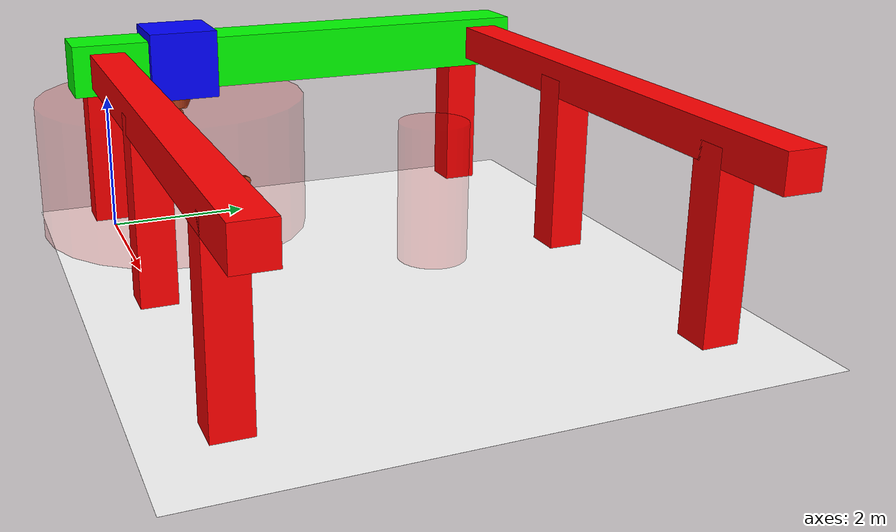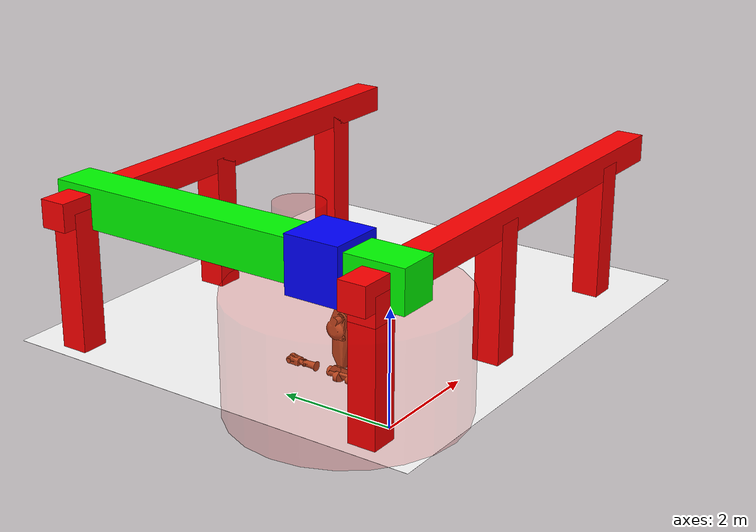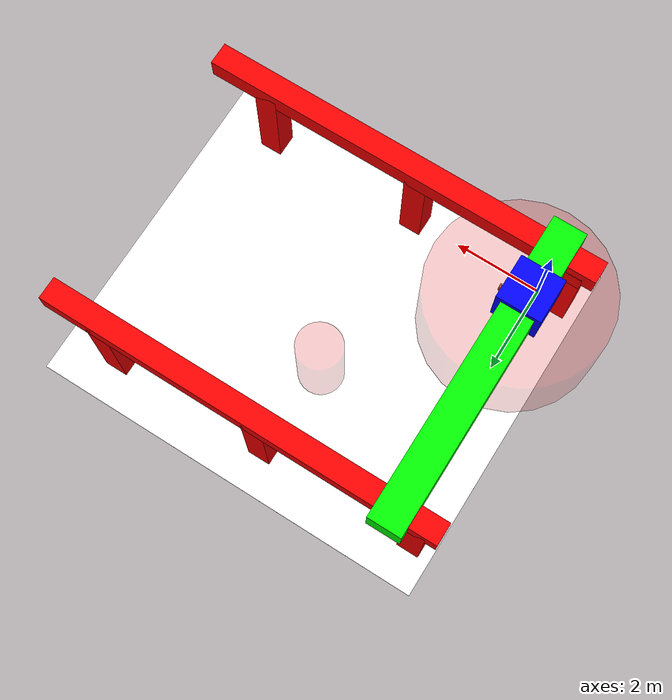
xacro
<?xml version="1.0"?>
<robot name="online_planning_example" xmlns:xacro="http://wiki.ros.org/xacro">

  <xacro:include filename="$(find tesseract_ros_examples)/urdf/gantry_robot_underslung/gantry_robot_underslung.xacro"/>

  <xacro:gantry_robot_underslung prefix=""/>
  <link name="world" />
  <joint name="world_to_gantry" type="fixed">
    <origin xyz="0 0 0" rpy="0 0 0"/>
    <parent link="world"/>
    <child link="gantry_base"/>
  </joint>

  <!-- Add a zone that should be kept free of humans -->
  <link name="robot_estop_zone">
    <visual>
      <origin xyz="0 0 1" rpy="0 0 0"/>
      <geometry>
        <cylinder length="2" radius="2.0"/>
      </geometry>
      <material name="estop_red"/>
    </visual>
    <collision>
      <origin xyz="0 0 1" rpy="0 0 0"/>
      <geometry>
        <cylinder length="2" radius="2.0"/>
      </geometry>
      <material name="estop_red"/>
    </collision>
  </link>
  <joint name="estop_zone" type="fixed">
    <origin xyz="0 0 0" rpy="0 0 0"/>
    <parent link="gantry_flange"/>
    <child link="robot_estop_zone"/>
  </joint>

  <!-- Add Floor -->
  <xacro:property name="length" value="9.0"/>
  <xacro:property name="width" value="8.0"/>
  <link name="floor">
    <visual>
      <origin xyz="${length / 2 - 1} ${width / 2 - 1} 0.001" rpy="0 0 0"/>
      <geometry>
        <box size="${length} ${width} 0.001"/>
      </geometry>
      <material name="tesseract_white"/>
    </visual>
    <collision>
      <origin xyz="${length / 2.0} ${width / 2.0} 0.1" rpy="0 0 0"/>
      <geometry>
        <box size="${length} ${width} 0.001"/>
      </geometry>
    </collision>
  </link>
  <joint name="world_to_floor" type="fixed">
    <origin xyz="0 0 0" rpy="0 0 0"/>
    <parent link="world"/>
    <child link="floor"/>
  </joint>

<!-- Add a "human" to the environment -->
  <link name="human_x" />
  <link name="human_y" />
  <link name="human_estop_zone">
    <visual>
      <origin xyz="0 0 1" rpy="0 0 0"/>
      <geometry>
        <cylinder length="2" radius="0.5"/>
      </geometry>
      <material name="estop_red"/>
    </visual>
    <collision>
      <origin xyz="0 0 0" rpy="0 0 0"/>
      <geometry>
        <cylinder length="2" radius="0.5"/>
      </geometry>
      <material name="estop_red"/>
    </collision>
  </link>
  <joint name="human_x_joint" type="prismatic">
    <origin xyz="3 0 0" rpy="0 0 0"/>
    <parent link="floor"/>
    <child link="human_x"/>
    <axis xyz="1 0 0"/>
    <limit lower="-10.0" upper="10.0" effort="0" velocity="0.5"/>
  </joint>
  <joint name="human_y_joint" type="prismatic">
    <origin xyz="0 4 0" rpy="0 0 0"/>
    <parent link="human_x"/>
    <child link="human_y"/>
    <axis xyz="0 1 0"/>
    <limit lower="-10.0" upper="10.0" effort="0" velocity="0.5"/>
  </joint>
  <joint name="human_estop_zone" type="fixed">
    <origin xyz="0 0 0" rpy="0 0 0"/>
    <parent link="human_y"/>
    <child link="human_estop_zone"/>
  </joint>

  <!-- Add target point TODO: See if this is even used -->
  <link name="target_x" />
  <link name="target_y" />
  <link name="target_z" />

  <joint name="target_x_joint" type="prismatic">
    <origin xyz="5 0 0" rpy="0 0 0"/>
    <parent link="floor"/>
    <child link="target_x"/>
    <axis xyz="1 0 0"/>
    <limit lower="-5.0" upper="1.0" effort="0" velocity="0.5"/>
  </joint>
  <joint name="target_y_joint" type="prismatic">
    <origin xyz="0 3 0" rpy="0 0 0"/>
    <parent link="target_x"/>
    <child link="target_y"/>
    <axis xyz="0 1 0"/>
    <limit lower="-3.0" upper="3.0" effort="0" velocity="0.5"/>
  </joint>
  <joint name="target_z_joint" type="prismatic">
    <origin xyz="0 0 0.5" rpy="0 0 0"/>
    <parent link="target_y"/>
    <child link="target_z"/>
    <axis xyz="0 0 1"/>
    <limit lower="-0.5" upper="0.5" effort="0" velocity="0.5"/>
  </joint>
</robot>

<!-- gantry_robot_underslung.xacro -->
<robot xmlns:xacro="http://ros.org/wiki/xacro">
  <xacro:macro name="gantry_robot_underslung" params="prefix">

  <xacro:include filename="$(find tesseract_ros_examples)/urdf/gantry_robot_underslung/gudel_fp6_macro.xacro"/>
  <xacro:include filename="$(find tesseract_support)/urdf/abb_irb2400.urdf" />

  <xacro:gudel_fp6 prefix="${prefix}gantry_"/>

  <joint name="${prefix}gantry_to_robot_base" type="fixed">
    <origin xyz="0 0 0" rpy="0 0 0"/>
    <parent link="${prefix}gantry_flange"/>
    <child link="base_link"/>
  </joint>
</xacro:macro>
</robot>

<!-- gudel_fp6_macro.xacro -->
<robot xmlns:xacro="http://ros.org/wiki/xacro">
  <xacro:macro name="gudel_fp6" params="prefix">

    <xacro:include filename="$(find tesseract_ros_examples)/urdf/gantry_robot_underslung/materials.xacro"/>
    <link name="${prefix}base">

    <!-- Rails -->
    <visual>
        <origin rpy="0 0 0" xyz="3.5 6.0 2.5"/>
        <geometry>
          <box size="9.0 0.5 0.5"/>
        </geometry>
        <material name="tesseract_red"/>
    </visual>
    <visual>
        <origin rpy="0 0 0" xyz="3.5 0.0 2.5"/>
        <geometry>
          <box size="9.0 0.5 0.5"/>
        </geometry>
        <material name="tesseract_red"/>
    </visual>
    <!-- Columns -->
    <visual>
        <origin rpy="0 0 0" xyz="-0.5 0.0 1.25"/>
        <geometry>
          <box size="0.5 0.5 2.5"/>
        </geometry>
        <material name="tesseract_red"/>
    </visual>
    <visual>
        <origin rpy="0 0 0" xyz="3.1 0.0 1.25"/>
        <geometry>
          <box size="0.5 0.5 2.5"/>
        </geometry>
        <material name="tesseract_red"/>
    </visual>
    <visual>
        <origin rpy="0 0 0" xyz="6.7 0.0 1.25"/>
        <geometry>
          <box size="0.5 0.5 2.5"/>
        </geometry>
        <material name="tesseract_red"/>
    </visual>
    <visual>
        <origin rpy="0 0 0" xyz="-0.5 6.0 1.25"/>
        <geometry>
          <box size="0.5 0.5 2.5"/>
        </geometry>
        <material name="tesseract_red"/>
    </visual>
    <visual>
        <origin rpy="0 0 0" xyz="3.1 6.0 1.25"/>
        <geometry>
          <box size="0.5 0.5 2.5"/>
        </geometry>
        <material name="tesseract_red"/>
    </visual>
    <visual>
        <origin rpy="0 0 0" xyz="6.7 6.0 1.25"/>
        <geometry>
          <box size="0.5 0.5 2.5"/>
        </geometry>
        <material name="tesseract_red"/>
    </visual>

    </link>
   <link name="${prefix}axis_1">
    <visual>
        <origin rpy="0 0 0" xyz="0.0 3.0 0.1"/>
        <geometry>
          <box size="0.75 7.0 0.75"/>
        </geometry>
        <material name="tesseract_green"/>
    </visual>

    </link>
    <link name="${prefix}axis_2">
      <visual>
          <origin rpy="0 0 0" xyz="0.0 0.0 0.1"/>
          <geometry>
            <box size="1.0 1.0 1.0"/>
          </geometry>
          <material name="tesseract_blue"/>
      </visual>
    </link>
  <link name="${prefix}flange"/>

  <joint name="${prefix}axis_1" type="prismatic">
    <origin xyz="0.0 .0 2.4" rpy="0 0 0"/>
    <parent link="${prefix}base"/>
    <child link="${prefix}axis_1"/>
    <axis xyz="1 0 0"/>
    <limit lower="0" upper="6.2" effort="0" velocity="0.2"/>
  </joint>
  <joint name="${prefix}axis_2" type="prismatic">
    <origin xyz="0 1.1 0" rpy="0 0 1.57"/>
    <parent link="${prefix}axis_1"/>
    <child link="${prefix}axis_2"/>
    <axis xyz="1 0 0"/>
    <limit lower="0" upper="4.2" effort="0" velocity="0.5"/>
  </joint>
  <joint name="${prefix}flange" type="fixed">
    <origin xyz="-0.18 -0.2 -.4" rpy="3.14159 0 0"/>
    <parent link="${prefix}axis_2"/>
    <child link="${prefix}flange"/>
  </joint>

  </xacro:macro>
</robot>

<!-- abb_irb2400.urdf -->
<!-- |    This document was autogenerated by xacro from irb2400.xacro                  | -->
<!-- |    EDITING THIS FILE BY HAND IS NOT RECOMMENDED                                 | -->
<robot name="abb_irb2400" xmlns:xacro="http://ros.org/wiki/xacro" xmlns:tesseract="https://github.com/tesseract-robotics/tesseract" tesseract:make_convex="true">
  <!-- Conversion were obtained from http://www.e-paint.co.uk/Lab_values.asp
       unless otherwise stated. -->
  <!-- Actual colors -->
  <!-- NCS 2070-Y60R orange, standard robot color 1974 - May 2014 -->
  <!-- RAL 7035 light grey (abb graphite white), standard robot color May 2014 - current -->
  <!-- RAL 9003 signal white (abb white), cleanroom robot color -->
  <!-- RAL 7032 pebble gray, controller -->
  <!-- RAL 7012 basalt gray (abb dark gray) , robot primer -->
  <!-- RAL 7021 black gray (abb black) , robot with dark link color -->
  <!-- Other robot colours availble, but not limited too. -->
  <!-- RAL 3001 signal red -->
  <!-- RAL 3002 carmine red -->
  <!-- RAL 5002 ultramarine blue -->
  <!-- RAL 5015 sky blue -->
  <!-- RAL 6002 leaf green -->
  <!-- RAL 9002 gray white -->
  <!-- RAL 9010 pure white -->
  <!-- approximations -->
  <!-- yellow, collision model -->
  <!-- link list -->
  <link name="base_link">
    <visual>
      <origin rpy="0 0 0" xyz="0 0 0"/>
      <geometry>
        <mesh filename="package://tesseract_support/meshes/abb_irb2400/irb2400/visual/base_link.dae"/>
      </geometry>
      <material name="">
        <color rgba="0.7372549 0.3490196 0.1607843 1"/>
      </material>
    </visual>
    <collision>
      <geometry>
        <mesh filename="package://tesseract_support/meshes/abb_irb2400/irb2400/collision/base_link.stl"/>
      </geometry>
      <material name="yellow">
        <color rgba="1 1 0 1"/>
      </material>
    </collision>
  </link>
  <link name="link_1">
    <visual>
      <origin rpy="0 0 0" xyz="0 0 0"/>
      <geometry>
        <mesh filename="package://tesseract_support/meshes/abb_irb2400/irb2400/visual/link_1.dae"/>
      </geometry>
      <material name="">
        <color rgba="0.7372549 0.3490196 0.1607843 1"/>
      </material>
    </visual>
    <collision>
      <origin rpy="0 0 0" xyz="0 0 0"/>
      <geometry>
        <mesh filename="package://tesseract_support/meshes/abb_irb2400/irb2400/collision/link_1.stl"/>
      </geometry>
    </collision>
  </link>
  <link name="link_2">
    <visual>
      <origin rpy="0 0 0" xyz="0 0 0"/>
      <geometry>
        <mesh filename="package://tesseract_support/meshes/abb_irb2400/irb2400/visual/link_2.dae"/>
      </geometry>
      <material name="">
        <color rgba="0.7372549 0.3490196 0.1607843 1"/>
      </material>
    </visual>
    <collision>
      <origin rpy="0 0 0" xyz="0 0 0"/>
      <geometry>
        <mesh filename="package://tesseract_support/meshes/abb_irb2400/irb2400/collision/link_2_whole.stl"/>
      </geometry>
    </collision>
  </link>
  <link name="link_3">
    <visual>
      <origin rpy="0 0 0" xyz="0 0 0"/>
      <geometry>
        <mesh filename="package://tesseract_support/meshes/abb_irb2400/irb2400/visual/link_3.dae"/>
      </geometry>
      <material name="">
        <color rgba="0.7372549 0.3490196 0.1607843 1"/>
      </material>
    </visual>
    <collision>
      <origin rpy="0 0 0" xyz="0 0 0"/>
      <geometry>
        <mesh filename="package://tesseract_support/meshes/abb_irb2400/irb2400/collision/link_3.stl"/>
      </geometry>
    </collision>
  </link>
  <link name="link_4">
    <visual>
      <origin rpy="0 0 0" xyz="0 0 0"/>
      <geometry>
        <mesh filename="package://tesseract_support/meshes/abb_irb2400/irb2400/visual/link_4.dae"/>
      </geometry>
      <material name="">
        <color rgba="0.7372549 0.3490196 0.1607843 1"/>
      </material>
    </visual>
    <collision>
      <origin rpy="0 0 0" xyz="0 0 0"/>
      <geometry>
        <mesh filename="package://tesseract_support/meshes/abb_irb2400/irb2400/collision/link_4.stl"/>
      </geometry>
    </collision>
  </link>
  <link name="link_5">
    <visual>
      <origin rpy="0 0 0" xyz="0 0 0"/>
      <geometry>
        <mesh filename="package://tesseract_support/meshes/abb_irb2400/irb2400/visual/link_5.dae"/>
      </geometry>
      <material name="">
        <color rgba="0.7372549 0.3490196 0.1607843 1"/>
      </material>
    </visual>
    <collision>
      <origin rpy="0 0 0" xyz="0 0 0"/>
      <geometry>
        <mesh filename="package://tesseract_support/meshes/abb_irb2400/irb2400/collision/link_5.stl"/>
      </geometry>
    </collision>
  </link>
  <link name="link_6">
    <visual>
      <origin rpy="0 0 0" xyz="0 0 0"/>
      <geometry>
        <mesh filename="package://tesseract_support/meshes/abb_irb2400/irb2400/visual/link_6.dae"/>
      </geometry>
      <material name="">
        <color rgba="0.1882353 0.1960784 0.2039216 1"/>
      </material>
    </visual>
    <collision>
      <origin rpy="0 0 0" xyz="0 0 0"/>
      <geometry>
        <mesh filename="package://tesseract_support/meshes/abb_irb2400/irb2400/collision/link_6.stl"/>
      </geometry>
    </collision>
  </link>
  <link name="tool0"/>
  <!-- end of link list -->
  <!-- joint list -->
  <joint name="joint_1" type="revolute">
    <origin rpy="0 0 0" xyz="0 0 0"/>
    <parent link="base_link"/>
    <child link="link_1"/>
    <axis xyz="0 0 1"/>
    <limit effort="0" lower="-3.1416" upper="3.1416" velocity="2.618"/>
  </joint>
  <joint name="joint_2" type="revolute">
    <origin rpy="0 0 0" xyz="0.1 0 0.615"/>
    <parent link="link_1"/>
    <child link="link_2"/>
    <axis xyz="0 1 0"/>
    <limit effort="0" lower="-1.7453" upper="1.9199" velocity="2.618"/>
  </joint>
  <joint name="joint_3" type="revolute">
    <origin rpy="0 0 0" xyz="0 0 0.705"/>
    <parent link="link_2"/>
    <child link="link_3"/>
    <axis xyz="0 1 0"/>
    <limit effort="0" lower="-1.0472" upper="1.1345" velocity="2.618"/>
  </joint>
  <joint name="joint_4" type="revolute">
    <origin rpy="0 0 0" xyz="0.258 0 0.135"/>
    <parent link="link_3"/>
    <child link="link_4"/>
    <axis xyz="1 0 0"/>
    <limit effort="0" lower="-3.49" upper="3.49" velocity="6.2832"/>
  </joint>
  <joint name="joint_5" type="revolute">
    <origin rpy="0 0 0" xyz="0.497 0 0"/>
    <parent link="link_4"/>
    <child link="link_5"/>
    <axis xyz="0 1 0"/>
    <limit effort="0" lower="-2.0944" upper="2.0944" velocity="6.2832"/>
  </joint>
  <joint name="joint_6" type="revolute">
    <origin rpy="0 0 0" xyz="0.085 0 0"/>
    <parent link="link_5"/>
    <child link="link_6"/>
    <axis xyz="1 0 0"/>
    <limit effort="0" lower="-6.9813" upper="6.9813" velocity="7.854"/>
  </joint>
  <joint name="joint_6-tool0" type="fixed">
    <parent link="link_6"/>
    <child link="tool0"/>
    <origin rpy="0 1.57079632679 0" xyz="0 0 0"/>
  </joint>
  <!-- end of joint list -->
  <!-- ROS base_link to ABB World Coordinates transform -->
  <link name="base"/>
  <joint name="base_link-base" type="fixed">
    <origin rpy="0 0 0" xyz="0 0 0"/>
    <parent link="base_link"/>
    <child link="base"/>
  </joint>
</robot>

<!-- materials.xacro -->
<robot>
  <material name="tesseract_black">
    <color rgba="0.0 0.0 0.0 1.0"/>
  </material>

  <material name="tesseract_white">
    <color rgba="1.0 1.0 1.0 1.0"/>
  </material>

  <material name="tesseract_red">
    <color rgba="1.0 0.0 0.0 1.0"/>
  </material>

  <material name="tesseract_green">
    <color rgba="0.0 1.0 0.0 1.0"/>
  </material>

  <material name="tesseract_blue">
    <color rgba="0.0 0.0 1.0 1.0"/>
  </material>

  <material name="estop_red">
    <color rgba="0.8 0 0 0.05"/>
  </material>
</robot>
